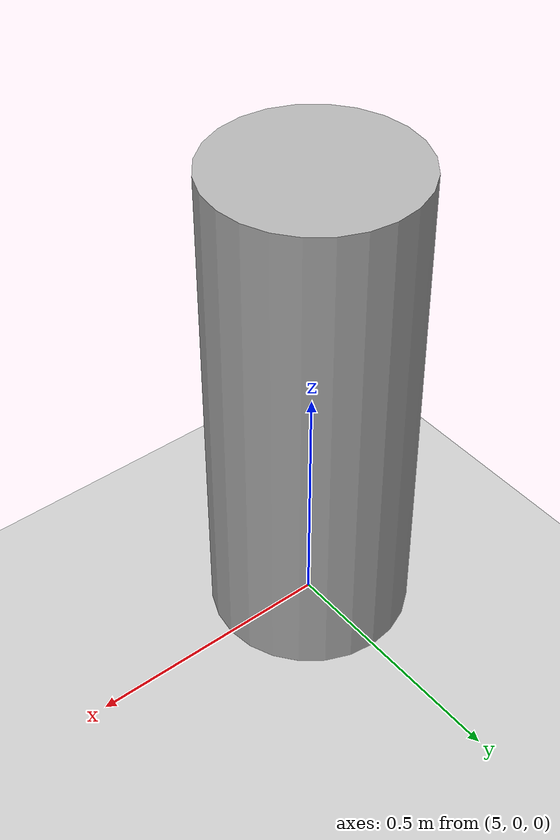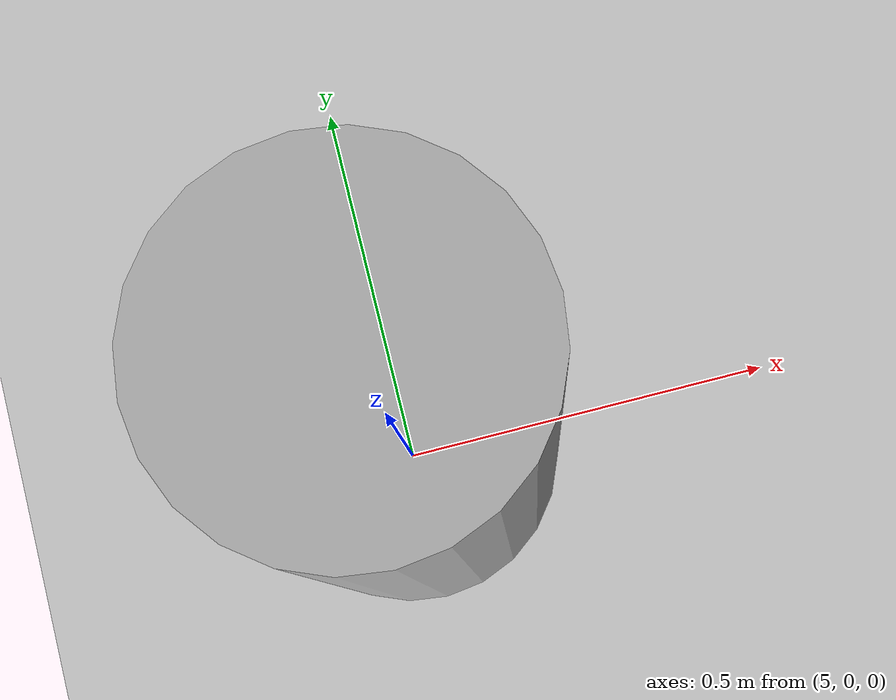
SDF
<?xml version="1.0" ?>
<sdf version="1.6">
  <world name="default">
    <plugin
      filename="gz-sim-physics-system"
      name="gz::sim::systems::Physics">
    </plugin>
    <plugin
      filename="gz-sim-sensors-system"
      name="gz::sim::systems::Sensors">
      <render_engine>ogre2</render_engine>
    </plugin>
    <plugin
      filename="gz-sim-scene-broadcaster-system"
      name="gz::sim::systems::SceneBroadcaster">
    </plugin>
    <plugin
      filename="gz-sim-user-commands-system"
      name="gz::sim::systems::UserCommands">
    </plugin>

    <light type="directional" name="sun">
      <cast_shadows>true</cast_shadows>
      <pose>0 0 10 0 0 0</pose>
      <diffuse>0.8 0.8 0.8 1</diffuse>
      <specular>0.2 0.2 0.2 1</specular>
      <attenuation>
        <range>1000</range>
        <constant>0.9</constant>
        <linear>0.01</linear>
        <quadratic>0.001</quadratic>
      </attenuation>
      <direction>-0.5 0.1 -0.9</direction>
    </light>

    <model name="ground_plane">
      <static>true</static>
      <link name="link">
        <collision name="collision">
          <geometry>
            <plane>
              <normal>0 0 1</normal>
              <size>100 100</size>
            </plane>
          </geometry>
        </collision>
        <visual name="visual">
          <geometry>
            <plane>
              <normal>0 0 1</normal>
              <size>100 100</size>
            </plane>
          </geometry>
          <material>
            <ambient>0.8 0.8 0.8 1</ambient>
            <diffuse>0.8 0.8 0.8 1</diffuse>
            <specular>0.8 0.8 0.8 1</specular>
          </material>
        </visual>
      </link>
    </model>

    <model name="pillar">
      <static>true</static>
      <pose>5 0 0.5 0 0 0</pose>
      <link name="link">
        <collision name="collision">
          <geometry>
            <cylinder>
              <radius>0.2</radius>
              <length>1.0</length>
            </cylinder>
          </geometry>
        </collision>
        <visual name="visual">
          <geometry>
            <cylinder>
              <radius>0.2</radius>
              <length>1.0</length>
            </cylinder>
          </geometry>
          <material>
            <ambient>0.3 0.3 0.3 1</ambient>
            <diffuse>0.7 0.7 0.7 1</diffuse>
            <specular>0.1 0.1 0.1 1</specular>
          </material>
        </visual>
      </link>
    </model>

  </world>
</sdf>
```
